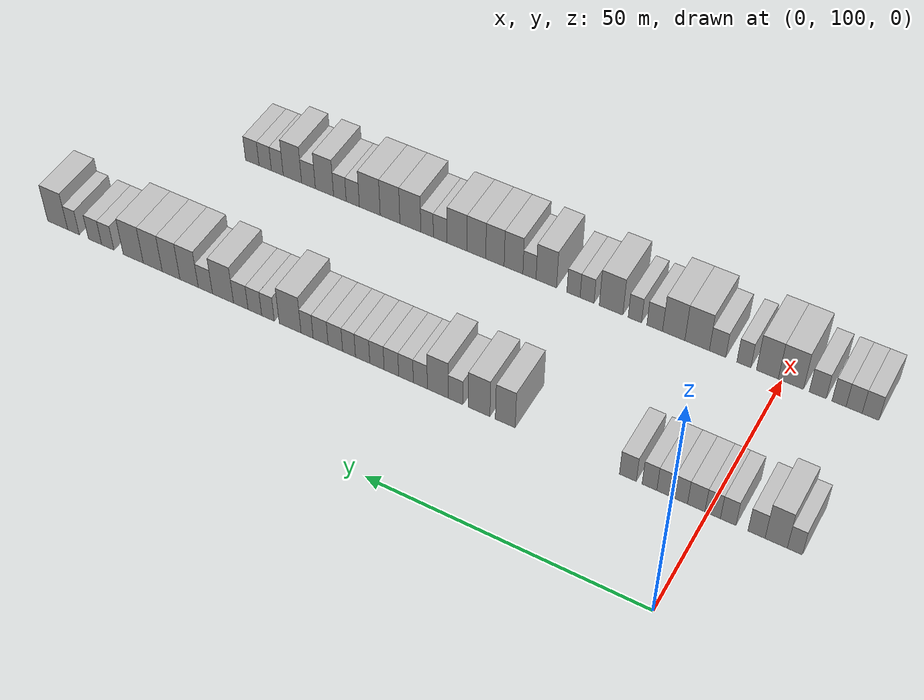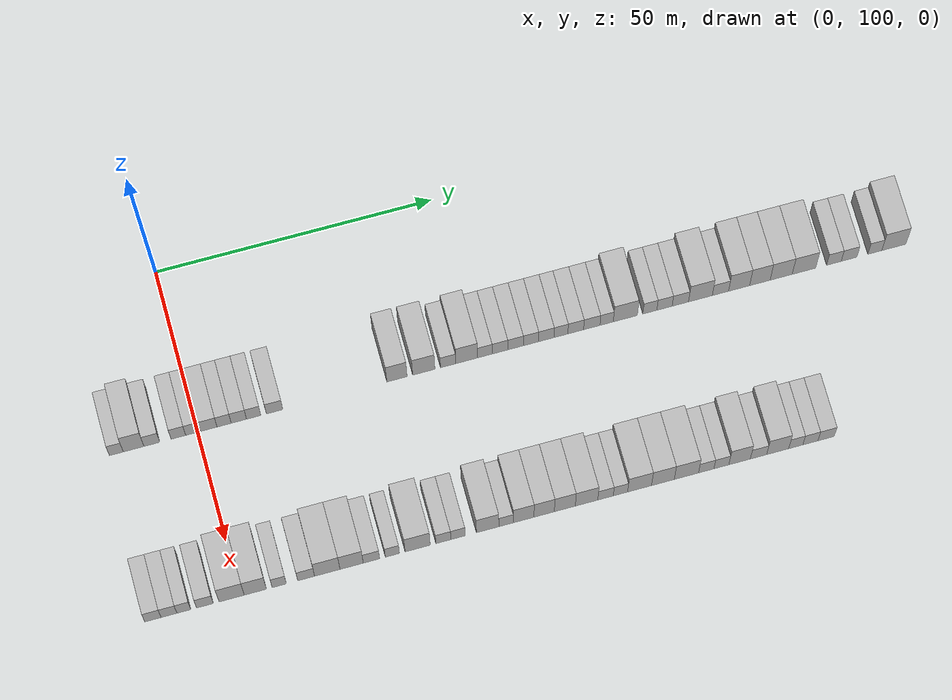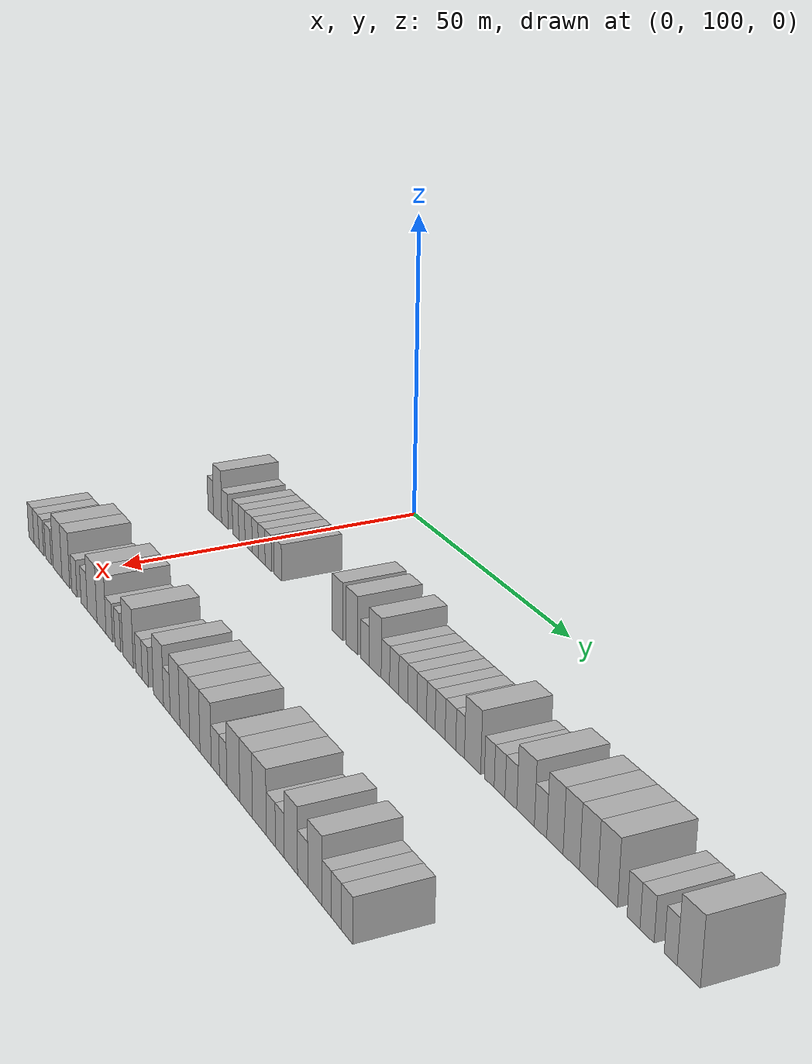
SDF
<sdf version="1.6">
 <world name="default">
  <model name="building_129">
   <static>1</static>
   <pose>25.0000 85.5705 0 0.000000 0.000000 0.000000</pose>
   <link name="link">
    <pose>0 0 3.00 0 0 0</pose>
    <collision name="collision"><geometry><box><size>10.0000 2.4705 6.0000</size></box></geometry></collision>
    <visual name="visual">
     <cast_shadows>0</cast_shadows>
     <geometry><box><size>10.0000 2.4705 6.0000</size></box></geometry>
     <material>
      <script>
       <uri>model://HANNAS_wall/materials/scripts</uri>
       <uri>model://HANNAS_wall/materials/textures</uri>
       <name>vrc/HANNAS_wall</name>
      </script>
     </material>
    </visual>
   </link>
  </model>
  <model name="building_130">
   <static>1</static>
   <pose>25.0000 88.6395 0 0.000000 0.000000 0.000000</pose>
   <link name="link">
    <pose>0 0 4.50 0 0 0</pose>
    <collision name="collision"><geometry><box><size>10.0000 3.6676 9.0000</size></box></geometry></collision>
    <visual name="visual">
     <cast_shadows>0</cast_shadows>
     <geometry><box><size>10.0000 3.6676 9.0000</size></box></geometry>
     <material>
      <script>
       <uri>model://HANNAS_wall/materials/scripts</uri>
       <uri>model://HANNAS_wall/materials/textures</uri>
       <name>vrc/HANNAS_wall</name>
      </script>
     </material>
    </visual>
   </link>
  </model>
  <model name="building_131">
   <static>1</static>
   <pose>25.0000 91.8857 0 0.000000 0.000000 0.000000</pose>
   <link name="link">
    <pose>0 0 3.00 0 0 0</pose>
    <collision name="collision"><geometry><box><size>10.0000 2.8248 6.0000</size></box></geometry></collision>
    <visual name="visual">
     <cast_shadows>0</cast_shadows>
     <geometry><box><size>10.0000 2.8248 6.0000</size></box></geometry>
     <material>
      <script>
       <uri>model://HANNAS_wall/materials/scripts</uri>
       <uri>model://HANNAS_wall/materials/textures</uri>
       <name>vrc/HANNAS_wall</name>
      </script>
     </material>
    </visual>
   </link>
  </model>
  <model name="building_132">
   <static>1</static>
   <pose>25.0000 96.6031 0 0.000000 0.000000 0.000000</pose>
   <link name="link">
    <pose>0 0 3.00 0 0 0</pose>
    <collision name="collision"><geometry><box><size>10.0000 2.6100 6.0000</size></box></geometry></collision>
    <visual name="visual">
     <cast_shadows>0</cast_shadows>
     <geometry><box><size>10.0000 2.6100 6.0000</size></box></geometry>
     <material>
      <script>
       <uri>model://HANNAS_wall/materials/scripts</uri>
       <uri>model://HANNAS_wall/materials/textures</uri>
       <name>vrc/HANNAS_wall</name>
      </script>
     </material>
    </visual>
   </link>
  </model>
  <model name="building_133">
   <static>1</static>
   <pose>25.0000 99.2189 0 0.000000 0.000000 0.000000</pose>
   <link name="link">
    <pose>0 0 3.00 0 0 0</pose>
    <collision name="collision"><geometry><box><size>10.0000 2.6217 6.0000</size></box></geometry></collision>
    <visual name="visual">
     <cast_shadows>0</cast_shadows>
     <geometry><box><size>10.0000 2.6217 6.0000</size></box></geometry>
     <material>
      <script>
       <uri>model://HANNAS_wall/materials/scripts</uri>
       <uri>model://HANNAS_wall/materials/textures</uri>
       <name>vrc/HANNAS_wall</name>
      </script>
     </material>
    </visual>
   </link>
  </model>
  <model name="building_134">
   <static>1</static>
   <pose>25.0000 102.0094 0 0.000000 0.000000 0.000000</pose>
   <link name="link">
    <pose>0 0 3.00 0 0 0</pose>
    <collision name="collision"><geometry><box><size>10.0000 2.9593 6.0000</size></box></geometry></collision>
    <visual name="visual">
     <cast_shadows>0</cast_shadows>
     <geometry><box><size>10.0000 2.9593 6.0000</size></box></geometry>
     <material>
      <script>
       <uri>model://HANNAS_wall/materials/scripts</uri>
       <uri>model://HANNAS_wall/materials/textures</uri>
       <name>vrc/HANNAS_wall</name>
      </script>
     </material>
    </visual>
   </link>
  </model>
  <model name="building_135">
   <static>1</static>
   <pose>25.0000 104.7526 0 0.000000 0.000000 0.000000</pose>
   <link name="link">
    <pose>0 0 3.00 0 0 0</pose>
    <collision name="collision"><geometry><box><size>10.0000 2.5271 6.0000</size></box></geometry></collision>
    <visual name="visual">
     <cast_shadows>0</cast_shadows>
     <geometry><box><size>10.0000 2.5271 6.0000</size></box></geometry>
     <material>
      <script>
       <uri>model://HANNAS_wall/materials/scripts</uri>
       <uri>model://HANNAS_wall/materials/textures</uri>
       <name>vrc/HANNAS_wall</name>
      </script>
     </material>
    </visual>
   </link>
  </model>
  <model name="building_136">
   <static>1</static>
   <pose>25.0000 107.3800 0 0.000000 0.000000 0.000000</pose>
   <link name="link">
    <pose>0 0 3.00 0 0 0</pose>
    <collision name="collision"><geometry><box><size>10.0000 2.7277 6.0000</size></box></geometry></collision>
    <visual name="visual">
     <cast_shadows>0</cast_shadows>
     <geometry><box><size>10.0000 2.7277 6.0000</size></box></geometry>
     <material>
      <script>
       <uri>model://HANNAS_wall/materials/scripts</uri>
       <uri>model://HANNAS_wall/materials/textures</uri>
       <name>vrc/HANNAS_wall</name>
      </script>
     </material>
    </visual>
   </link>
  </model>
  <model name="building_137">
   <static>1</static>
   <pose>25.0000 110.0173 0 0.000000 0.000000 0.000000</pose>
   <link name="link">
    <pose>0 0 3.00 0 0 0</pose>
    <collision name="collision"><geometry><box><size>10.0000 2.5469 6.0000</size></box></geometry></collision>
    <visual name="visual">
     <cast_shadows>0</cast_shadows>
     <geometry><box><size>10.0000 2.5469 6.0000</size></box></geometry>
     <material>
      <script>
       <uri>model://HANNAS_wall/materials/scripts</uri>
       <uri>model://HANNAS_wall/materials/textures</uri>
       <name>vrc/HANNAS_wall</name>
      </script>
     </material>
    </visual>
   </link>
  </model>
  <model name="building_138">
   <static>1</static>
   <pose>25.0000 113.7594 0 0.000000 0.000000 0.000000</pose>
   <link name="link">
    <pose>0 0 3.00 0 0 0</pose>
    <collision name="collision"><geometry><box><size>10.0000 2.9372 6.0000</size></box></geometry></collision>
    <visual name="visual">
     <cast_shadows>0</cast_shadows>
     <geometry><box><size>10.0000 2.9372 6.0000</size></box></geometry>
     <material>
      <script>
       <uri>model://HANNAS_wall/materials/scripts</uri>
       <uri>model://HANNAS_wall/materials/textures</uri>
       <name>vrc/HANNAS_wall</name>
      </script>
     </material>
    </visual>
   </link>
  </model>
  <model name="building_139">
   <static>1</static>
   <pose>25.0000 135.6793 0 0.000000 0.000000 0.000000</pose>
   <link name="link">
    <pose>0 0 4.50 0 0 0</pose>
    <collision name="collision"><geometry><box><size>10.0000 3.6342 9.0000</size></box></geometry></collision>
    <visual name="visual">
     <cast_shadows>0</cast_shadows>
     <geometry><box><size>10.0000 3.6342 9.0000</size></box></geometry>
     <material>
      <script>
       <uri>model://HANNAS_wall/materials/scripts</uri>
       <uri>model://HANNAS_wall/materials/textures</uri>
       <name>vrc/HANNAS_wall</name>
      </script>
     </material>
    </visual>
   </link>
  </model>
  <model name="building_140">
   <static>1</static>
   <pose>25.0000 140.4978 0 0.000000 0.000000 0.000000</pose>
   <link name="link">
    <pose>0 0 4.50 0 0 0</pose>
    <collision name="collision"><geometry><box><size>10.0000 4.0028 9.0000</size></box></geometry></collision>
    <visual name="visual">
     <cast_shadows>0</cast_shadows>
     <geometry><box><size>10.0000 4.0028 9.0000</size></box></geometry>
     <material>
      <script>
       <uri>model://HANNAS_wall/materials/scripts</uri>
       <uri>model://HANNAS_wall/materials/textures</uri>
       <name>vrc/HANNAS_wall</name>
      </script>
     </material>
    </visual>
   </link>
  </model>
  <model name="building_141">
   <static>1</static>
   <pose>25.0000 144.8788 0 0.000000 0.000000 0.000000</pose>
   <link name="link">
    <pose>0 0 3.00 0 0 0</pose>
    <collision name="collision"><geometry><box><size>10.0000 2.7592 6.0000</size></box></geometry></collision>
    <visual name="visual">
     <cast_shadows>0</cast_shadows>
     <geometry><box><size>10.0000 2.7592 6.0000</size></box></geometry>
     <material>
      <script>
       <uri>model://HANNAS_wall/materials/scripts</uri>
       <uri>model://HANNAS_wall/materials/textures</uri>
       <name>vrc/HANNAS_wall</name>
      </script>
     </material>
    </visual>
   </link>
  </model>
  <model name="building_142">
   <static>1</static>
   <pose>25.0000 148.2111 0 0.000000 0.000000 0.000000</pose>
   <link name="link">
    <pose>0 0 4.50 0 0 0</pose>
    <collision name="collision"><geometry><box><size>10.0000 3.9054 9.0000</size></box></geometry></collision>
    <visual name="visual">
     <cast_shadows>0</cast_shadows>
     <geometry><box><size>10.0000 3.9054 9.0000</size></box></geometry>
     <material>
      <script>
       <uri>model://HANNAS_wall/materials/scripts</uri>
       <uri>model://HANNAS_wall/materials/textures</uri>
       <name>vrc/HANNAS_wall</name>
      </script>
     </material>
    </visual>
   </link>
  </model>
  <model name="building_143">
   <static>1</static>
   <pose>25.0000 151.4961 0 0.000000 0.000000 0.000000</pose>
   <link name="link">
    <pose>0 0 3.00 0 0 0</pose>
    <collision name="collision"><geometry><box><size>10.0000 2.6647 6.0000</size></box></geometry></collision>
    <visual name="visual">
     <cast_shadows>0</cast_shadows>
     <geometry><box><size>10.0000 2.6647 6.0000</size></box></geometry>
     <material>
      <script>
       <uri>model://HANNAS_wall/materials/scripts</uri>
       <uri>model://HANNAS_wall/materials/textures</uri>
       <name>vrc/HANNAS_wall</name>
      </script>
     </material>
    </visual>
   </link>
  </model>
  <model name="building_144">
   <static>1</static>
   <pose>25.0000 154.2249 0 0.000000 0.000000 0.000000</pose>
   <link name="link">
    <pose>0 0 3.00 0 0 0</pose>
    <collision name="collision"><geometry><box><size>10.0000 2.7928 6.0000</size></box></geometry></collision>
    <visual name="visual">
     <cast_shadows>0</cast_shadows>
     <geometry><box><size>10.0000 2.7928 6.0000</size></box></geometry>
     <material>
      <script>
       <uri>model://HANNAS_wall/materials/scripts</uri>
       <uri>model://HANNAS_wall/materials/textures</uri>
       <name>vrc/HANNAS_wall</name>
      </script>
     </material>
    </visual>
   </link>
  </model>
  <model name="building_145">
   <static>1</static>
   <pose>25.0000 157.0172 0 0.000000 0.000000 0.000000</pose>
   <link name="link">
    <pose>0 0 3.00 0 0 0</pose>
    <collision name="collision"><geometry><box><size>10.0000 2.7918 6.0000</size></box></geometry></collision>
    <visual name="visual">
     <cast_shadows>0</cast_shadows>
     <geometry><box><size>10.0000 2.7918 6.0000</size></box></geometry>
     <material>
      <script>
       <uri>model://HANNAS_wall/materials/scripts</uri>
       <uri>model://HANNAS_wall/materials/textures</uri>
       <name>vrc/HANNAS_wall</name>
      </script>
     </material>
    </visual>
   </link>
  </model>
  <model name="building_146">
   <static>1</static>
   <pose>25.0000 159.7956 0 0.000000 0.000000 0.000000</pose>
   <link name="link">
    <pose>0 0 3.00 0 0 0</pose>
    <collision name="collision"><geometry><box><size>10.0000 2.7650 6.0000</size></box></geometry></collision>
    <visual name="visual">
     <cast_shadows>0</cast_shadows>
     <geometry><box><size>10.0000 2.7650 6.0000</size></box></geometry>
     <material>
      <script>
       <uri>model://HANNAS_wall/materials/scripts</uri>
       <uri>model://HANNAS_wall/materials/textures</uri>
       <name>vrc/HANNAS_wall</name>
      </script>
     </material>
    </visual>
   </link>
  </model>
  <model name="building_147">
   <static>1</static>
   <pose>25.0000 162.5721 0 0.000000 0.000000 0.000000</pose>
   <link name="link">
    <pose>0 0 3.00 0 0 0</pose>
    <collision name="collision"><geometry><box><size>10.0000 2.7880 6.0000</size></box></geometry></collision>
    <visual name="visual">
     <cast_shadows>0</cast_shadows>
     <geometry><box><size>10.0000 2.7880 6.0000</size></box></geometry>
     <material>
      <script>
       <uri>model://HANNAS_wall/materials/scripts</uri>
       <uri>model://HANNAS_wall/materials/textures</uri>
       <name>vrc/HANNAS_wall</name>
      </script>
     </material>
    </visual>
   </link>
  </model>
  <model name="building_148">
   <static>1</static>
   <pose>25.0000 165.2158 0 0.000000 0.000000 0.000000</pose>
   <link name="link">
    <pose>0 0 3.00 0 0 0</pose>
    <collision name="collision"><geometry><box><size>10.0000 2.4994 6.0000</size></box></geometry></collision>
    <visual name="visual">
     <cast_shadows>0</cast_shadows>
     <geometry><box><size>10.0000 2.4994 6.0000</size></box></geometry>
     <material>
      <script>
       <uri>model://HANNAS_wall/materials/scripts</uri>
       <uri>model://HANNAS_wall/materials/textures</uri>
       <name>vrc/HANNAS_wall</name>
      </script>
     </material>
    </visual>
   </link>
  </model>
  <model name="building_149">
   <static>1</static>
   <pose>25.0000 167.8904 0 0.000000 0.000000 0.000000</pose>
   <link name="link">
    <pose>0 0 3.00 0 0 0</pose>
    <collision name="collision"><geometry><box><size>10.0000 2.8497 6.0000</size></box></geometry></collision>
    <visual name="visual">
     <cast_shadows>0</cast_shadows>
     <geometry><box><size>10.0000 2.8497 6.0000</size></box></geometry>
     <material>
      <script>
       <uri>model://HANNAS_wall/materials/scripts</uri>
       <uri>model://HANNAS_wall/materials/textures</uri>
       <name>vrc/HANNAS_wall</name>
      </script>
     </material>
    </visual>
   </link>
  </model>
  <model name="building_150">
   <static>1</static>
   <pose>25.0000 170.7995 0 0.000000 0.000000 0.000000</pose>
   <link name="link">
    <pose>0 0 3.00 0 0 0</pose>
    <collision name="collision"><geometry><box><size>10.0000 2.9686 6.0000</size></box></geometry></collision>
    <visual name="visual">
     <cast_shadows>0</cast_shadows>
     <geometry><box><size>10.0000 2.9686 6.0000</size></box></geometry>
     <material>
      <script>
       <uri>model://HANNAS_wall/materials/scripts</uri>
       <uri>model://HANNAS_wall/materials/textures</uri>
       <name>vrc/HANNAS_wall</name>
      </script>
     </material>
    </visual>
   </link>
  </model>
  <model name="building_151">
   <static>1</static>
   <pose>25.0000 173.4852 0 0.000000 0.000000 0.000000</pose>
   <link name="link">
    <pose>0 0 3.00 0 0 0</pose>
    <collision name="collision"><geometry><box><size>10.0000 2.4027 6.0000</size></box></geometry></collision>
    <visual name="visual">
     <cast_shadows>0</cast_shadows>
     <geometry><box><size>10.0000 2.4027 6.0000</size></box></geometry>
     <material>
      <script>
       <uri>model://HANNAS_wall/materials/scripts</uri>
       <uri>model://HANNAS_wall/materials/textures</uri>
       <name>vrc/HANNAS_wall</name>
      </script>
     </material>
    </visual>
   </link>
  </model>
  <model name="building_152">
   <static>1</static>
   <pose>25.0000 176.8687 0 0.000000 0.000000 0.000000</pose>
   <link name="link">
    <pose>0 0 4.50 0 0 0</pose>
    <collision name="collision"><geometry><box><size>10.0000 4.3644 9.0000</size></box></geometry></collision>
    <visual name="visual">
     <cast_shadows>0</cast_shadows>
     <geometry><box><size>10.0000 4.3644 9.0000</size></box></geometry>
     <material>
      <script>
       <uri>model://HANNAS_wall/materials/scripts</uri>
       <uri>model://HANNAS_wall/materials/textures</uri>
       <name>vrc/HANNAS_wall</name>
      </script>
     </material>
    </visual>
   </link>
  </model>
  <model name="building_153">
   <static>1</static>
   <pose>25.0000 181.3226 0 0.000000 0.000000 0.000000</pose>
   <link name="link">
    <pose>0 0 3.00 0 0 0</pose>
    <collision name="collision"><geometry><box><size>10.0000 2.5434 6.0000</size></box></geometry></collision>
    <visual name="visual">
     <cast_shadows>0</cast_shadows>
     <geometry><box><size>10.0000 2.5434 6.0000</size></box></geometry>
     <material>
      <script>
       <uri>model://HANNAS_wall/materials/scripts</uri>
       <uri>model://HANNAS_wall/materials/textures</uri>
       <name>vrc/HANNAS_wall</name>
      </script>
     </material>
    </visual>
   </link>
  </model>
  <model name="building_154">
   <static>1</static>
   <pose>25.0000 183.9826 0 0.000000 0.000000 0.000000</pose>
   <link name="link">
    <pose>0 0 3.00 0 0 0</pose>
    <collision name="collision"><geometry><box><size>10.0000 2.7764 6.0000</size></box></geometry></collision>
    <visual name="visual">
     <cast_shadows>0</cast_shadows>
     <geometry><box><size>10.0000 2.7764 6.0000</size></box></geometry>
     <material>
      <script>
       <uri>model://HANNAS_wall/materials/scripts</uri>
       <uri>model://HANNAS_wall/materials/textures</uri>
       <name>vrc/HANNAS_wall</name>
      </script>
     </material>
    </visual>
   </link>
  </model>
  <model name="building_155">
   <static>1</static>
   <pose>25.0000 186.8530 0 0.000000 0.000000 0.000000</pose>
   <link name="link">
    <pose>0 0 3.00 0 0 0</pose>
    <collision name="collision"><geometry><box><size>10.0000 2.9643 6.0000</size></box></geometry></collision>
    <visual name="visual">
     <cast_shadows>0</cast_shadows>
     <geometry><box><size>10.0000 2.9643 6.0000</size></box></geometry>
     <material>
      <script>
       <uri>model://HANNAS_wall/materials/scripts</uri>
       <uri>model://HANNAS_wall/materials/textures</uri>
       <name>vrc/HANNAS_wall</name>
      </script>
     </material>
    </visual>
   </link>
  </model>
  <model name="building_156">
   <static>1</static>
   <pose>25.0000 190.5050 0 0.000000 0.000000 0.000000</pose>
   <link name="link">
    <pose>0 0 4.50 0 0 0</pose>
    <collision name="collision"><geometry><box><size>10.0000 4.3397 9.0000</size></box></geometry></collision>
    <visual name="visual">
     <cast_shadows>0</cast_shadows>
     <geometry><box><size>10.0000 4.3397 9.0000</size></box></geometry>
     <material>
      <script>
       <uri>model://HANNAS_wall/materials/scripts</uri>
       <uri>model://HANNAS_wall/materials/textures</uri>
       <name>vrc/HANNAS_wall</name>
      </script>
     </material>
    </visual>
   </link>
  </model>
  <model name="building_157">
   <static>1</static>
   <pose>25.0000 194.1493 0 0.000000 0.000000 0.000000</pose>
   <link name="link">
    <pose>0 0 3.00 0 0 0</pose>
    <collision name="collision"><geometry><box><size>10.0000 2.9489 6.0000</size></box></geometry></collision>
    <visual name="visual">
     <cast_shadows>0</cast_shadows>
     <geometry><box><size>10.0000 2.9489 6.0000</size></box></geometry>
     <material>
      <script>
       <uri>model://HANNAS_wall/materials/scripts</uri>
       <uri>model://HANNAS_wall/materials/textures</uri>
       <name>vrc/HANNAS_wall</name>
      </script>
     </material>
    </visual>
   </link>
  </model>
  <model name="building_158">
   <static>1</static>
   <pose>25.0000 197.5414 0 0.000000 0.000000 0.000000</pose>
   <link name="link">
    <pose>0 0 4.50 0 0 0</pose>
    <collision name="collision"><geometry><box><size>10.0000 3.8354 9.0000</size></box></geometry></collision>
    <visual name="visual">
     <cast_shadows>0</cast_shadows>
     <geometry><box><size>10.0000 3.8354 9.0000</size></box></geometry>
     <material>
      <script>
       <uri>model://HANNAS_wall/materials/scripts</uri>
       <uri>model://HANNAS_wall/materials/textures</uri>
       <name>vrc/HANNAS_wall</name>
      </script>
     </material>
    </visual>
   </link>
  </model>
  <model name="building_159">
   <static>1</static>
   <pose>25.0000 201.3271 0 0.000000 0.000000 0.000000</pose>
   <link name="link">
    <pose>0 0 4.50 0 0 0</pose>
    <collision name="collision"><geometry><box><size>10.0000 3.7359 9.0000</size></box></geometry></collision>
    <visual name="visual">
     <cast_shadows>0</cast_shadows>
     <geometry><box><size>10.0000 3.7359 9.0000</size></box></geometry>
     <material>
      <script>
       <uri>model://HANNAS_wall/materials/scripts</uri>
       <uri>model://HANNAS_wall/materials/textures</uri>
       <name>vrc/HANNAS_wall</name>
      </script>
     </material>
    </visual>
   </link>
  </model>
  <model name="building_160">
   <static>1</static>
   <pose>25.0000 205.2073 0 0.000000 0.000000 0.000000</pose>
   <link name="link">
    <pose>0 0 4.50 0 0 0</pose>
    <collision name="collision"><geometry><box><size>10.0000 4.0246 9.0000</size></box></geometry></collision>
    <visual name="visual">
     <cast_shadows>0</cast_shadows>
     <geometry><box><size>10.0000 4.0246 9.0000</size></box></geometry>
     <material>
      <script>
       <uri>model://HANNAS_wall/materials/scripts</uri>
       <uri>model://HANNAS_wall/materials/textures</uri>
       <name>vrc/HANNAS_wall</name>
      </script>
     </material>
    </visual>
   </link>
  </model>
  <model name="building_161">
   <static>1</static>
   <pose>25.0000 209.3682 0 0.000000 0.000000 0.000000</pose>
   <link name="link">
    <pose>0 0 4.50 0 0 0</pose>
    <collision name="collision"><geometry><box><size>10.0000 4.2972 9.0000</size></box></geometry></collision>
    <visual name="visual">
     <cast_shadows>0</cast_shadows>
     <geometry><box><size>10.0000 4.2972 9.0000</size></box></geometry>
     <material>
      <script>
       <uri>model://HANNAS_wall/materials/scripts</uri>
       <uri>model://HANNAS_wall/materials/textures</uri>
       <name>vrc/HANNAS_wall</name>
      </script>
     </material>
    </visual>
   </link>
  </model>
  <model name="building_162">
   <static>1</static>
   <pose>25.0000 214.8520 0 0.000000 0.000000 0.000000</pose>
   <link name="link">
    <pose>0 0 3.00 0 0 0</pose>
    <collision name="collision"><geometry><box><size>10.0000 2.6704 6.0000</size></box></geometry></collision>
    <visual name="visual">
     <cast_shadows>0</cast_shadows>
     <geometry><box><size>10.0000 2.6704 6.0000</size></box></geometry>
     <material>
      <script>
       <uri>model://HANNAS_wall/materials/scripts</uri>
       <uri>model://HANNAS_wall/materials/textures</uri>
       <name>vrc/HANNAS_wall</name>
      </script>
     </material>
    </visual>
   </link>
  </model>
  <model name="building_163">
   <static>1</static>
   <pose>25.0000 217.6243 0 0.000000 0.000000 0.000000</pose>
   <link name="link">
    <pose>0 0 3.00 0 0 0</pose>
    <collision name="collision"><geometry><box><size>10.0000 2.8742 6.0000</size></box></geometry></collision>
    <visual name="visual">
     <cast_shadows>0</cast_shadows>
     <geometry><box><size>10.0000 2.8742 6.0000</size></box></geometry>
     <material>
      <script>
       <uri>model://HANNAS_wall/materials/scripts</uri>
       <uri>model://HANNAS_wall/materials/textures</uri>
       <name>vrc/HANNAS_wall</name>
      </script>
     </material>
    </visual>
   </link>
  </model>
  <model name="building_164">
   <static>1</static>
   <pose>25.0000 222.3308 0 0.000000 0.000000 0.000000</pose>
   <link name="link">
    <pose>0 0 3.00 0 0 0</pose>
    <collision name="collision"><geometry><box><size>10.0000 2.5389 6.0000</size></box></geometry></collision>
    <visual name="visual">
     <cast_shadows>0</cast_shadows>
     <geometry><box><size>10.0000 2.5389 6.0000</size></box></geometry>
     <material>
      <script>
       <uri>model://HANNAS_wall/materials/scripts</uri>
       <uri>model://HANNAS_wall/materials/textures</uri>
       <name>vrc/HANNAS_wall</name>
      </script>
     </material>
    </visual>
   </link>
  </model>
  <model name="building_165">
   <static>1</static>
   <pose>25.0000 225.8159 0 0.000000 0.000000 0.000000</pose>
   <link name="link">
    <pose>0 0 4.50 0 0 0</pose>
    <collision name="collision"><geometry><box><size>10.0000 4.4312 9.0000</size></box></geometry></collision>
    <visual name="visual">
     <cast_shadows>0</cast_shadows>
     <geometry><box><size>10.0000 4.4312 9.0000</size></box></geometry>
     <material>
      <script>
       <uri>model://HANNAS_wall/materials/scripts</uri>
       <uri>model://HANNAS_wall/materials/textures</uri>
       <name>vrc/HANNAS_wall</name>
      </script>
     </material>
    </visual>
   </link>
  </model>
  <model name="building_355">
   <static>1</static>
   <pose>55.0000 84.6403 0 0.000000 0.000000 0.000000</pose>
   <link name="link">
    <pose>0 0 3.00 0 0 0</pose>
    <collision name="collision"><geometry><box><size>10.0000 2.8675 6.0000</size></box></geometry></collision>
    <visual name="visual">
     <cast_shadows>0</cast_shadows>
     <geometry><box><size>10.0000 2.8675 6.0000</size></box></geometry>
     <material>
      <script>
       <uri>model://HANNAS_wall/materials/scripts</uri>
       <uri>model://HANNAS_wall/materials/textures</uri>
       <name>vrc/HANNAS_wall</name>
      </script>
     </material>
    </visual>
   </link>
  </model>
  <model name="building_356">
   <static>1</static>
   <pose>55.0000 87.4614 0 0.000000 0.000000 0.000000</pose>
   <link name="link">
    <pose>0 0 3.00 0 0 0</pose>
    <collision name="collision"><geometry><box><size>10.0000 2.7746 6.0000</size></box></geometry></collision>
    <visual name="visual">
     <cast_shadows>0</cast_shadows>
     <geometry><box><size>10.0000 2.7746 6.0000</size></box></geometry>
     <material>
      <script>
       <uri>model://HANNAS_wall/materials/scripts</uri>
       <uri>model://HANNAS_wall/materials/textures</uri>
       <name>vrc/HANNAS_wall</name>
      </script>
     </material>
    </visual>
   </link>
  </model>
  <model name="building_357">
   <static>1</static>
   <pose>55.0000 90.0687 0 0.000000 0.000000 0.000000</pose>
   <link name="link">
    <pose>0 0 3.00 0 0 0</pose>
    <collision name="collision"><geometry><box><size>10.0000 2.4400 6.0000</size></box></geometry></collision>
    <visual name="visual">
     <cast_shadows>0</cast_shadows>
     <geometry><box><size>10.0000 2.4400 6.0000</size></box></geometry>
     <material>
      <script>
       <uri>model://HANNAS_wall/materials/scripts</uri>
       <uri>model://HANNAS_wall/materials/textures</uri>
       <name>vrc/HANNAS_wall</name>
      </script>
     </material>
    </visual>
   </link>
  </model>
  <model name="building_358">
   <static>1</static>
   <pose>55.0000 93.7676 0 0.000000 0.000000 0.000000</pose>
   <link name="link">
    <pose>0 0 3.00 0 0 0</pose>
    <collision name="collision"><geometry><box><size>10.0000 2.9579 6.0000</size></box></geometry></collision>
    <visual name="visual">
     <cast_shadows>0</cast_shadows>
     <geometry><box><size>10.0000 2.9579 6.0000</size></box></geometry>
     <material>
      <script>
       <uri>model://HANNAS_wall/materials/scripts</uri>
       <uri>model://HANNAS_wall/materials/textures</uri>
       <name>vrc/HANNAS_wall</name>
      </script>
     </material>
    </visual>
   </link>
  </model>
  <model name="building_359">
   <static>1</static>
   <pose>55.0000 98.4735 0 0.000000 0.000000 0.000000</pose>
   <link name="link">
    <pose>0 0 4.50 0 0 0</pose>
    <collision name="collision"><geometry><box><size>10.0000 4.4538 9.0000</size></box></geometry></collision>
    <visual name="visual">
     <cast_shadows>0</cast_shadows>
     <geometry><box><size>10.0000 4.4538 9.0000</size></box></geometry>
     <material>
      <script>
       <uri>model://HANNAS_wall/materials/scripts</uri>
       <uri>model://HANNAS_wall/materials/textures</uri>
       <name>vrc/HANNAS_wall</name>
      </script>
     </material>
    </visual>
   </link>
  </model>
  <model name="building_360">
   <static>1</static>
   <pose>55.0000 102.6452 0 0.000000 0.000000 0.000000</pose>
   <link name="link">
    <pose>0 0 4.50 0 0 0</pose>
    <collision name="collision"><geometry><box><size>10.0000 3.8898 9.0000</size></box></geometry></collision>
    <visual name="visual">
     <cast_shadows>0</cast_shadows>
     <geometry><box><size>10.0000 3.8898 9.0000</size></box></geometry>
     <material>
      <script>
       <uri>model://HANNAS_wall/materials/scripts</uri>
       <uri>model://HANNAS_wall/materials/textures</uri>
       <name>vrc/HANNAS_wall</name>
      </script>
     </material>
    </visual>
   </link>
  </model>
  <model name="building_361">
   <static>1</static>
   <pose>55.0000 106.8451 0 0.000000 0.000000 0.000000</pose>
   <link name="link">
    <pose>0 0 3.00 0 0 0</pose>
    <collision name="collision"><geometry><box><size>10.0000 2.5099 6.0000</size></box></geometry></collision>
    <visual name="visual">
     <cast_shadows>0</cast_shadows>
     <geometry><box><size>10.0000 2.5099 6.0000</size></box></geometry>
     <material>
      <script>
       <uri>model://HANNAS_wall/materials/scripts</uri>
       <uri>model://HANNAS_wall/materials/textures</uri>
       <name>vrc/HANNAS_wall</name>
      </script>
     </material>
    </visual>
   </link>
  </model>
  <model name="building_362">
   <static>1</static>
   <pose>55.0000 111.5904 0 0.000000 0.000000 0.000000</pose>
   <link name="link">
    <pose>0 0 3.00 0 0 0</pose>
    <collision name="collision"><geometry><box><size>10.0000 2.9807 6.0000</size></box></geometry></collision>
    <visual name="visual">
     <cast_shadows>0</cast_shadows>
     <geometry><box><size>10.0000 2.9807 6.0000</size></box></geometry>
     <material>
      <script>
       <uri>model://HANNAS_wall/materials/scripts</uri>
       <uri>model://HANNAS_wall/materials/textures</uri>
       <name>vrc/HANNAS_wall</name>
      </script>
     </material>
    </visual>
   </link>
  </model>
  <model name="building_363">
   <static>1</static>
   <pose>55.0000 115.3212 0 0.000000 0.000000 0.000000</pose>
   <link name="link">
    <pose>0 0 4.50 0 0 0</pose>
    <collision name="collision"><geometry><box><size>10.0000 4.4809 9.0000</size></box></geometry></collision>
    <visual name="visual">
     <cast_shadows>0</cast_shadows>
     <geometry><box><size>10.0000 4.4809 9.0000</size></box></geometry>
     <material>
      <script>
       <uri>model://HANNAS_wall/materials/scripts</uri>
       <uri>model://HANNAS_wall/materials/textures</uri>
       <name>vrc/HANNAS_wall</name>
      </script>
     </material>
    </visual>
   </link>
  </model>
  <model name="building_364">
   <static>1</static>
   <pose>55.0000 119.6238 0 0.000000 0.000000 0.000000</pose>
   <link name="link">
    <pose>0 0 4.50 0 0 0</pose>
    <collision name="collision"><geometry><box><size>10.0000 4.1243 9.0000</size></box></geometry></collision>
    <visual name="visual">
     <cast_shadows>0</cast_shadows>
     <geometry><box><size>10.0000 4.1243 9.0000</size></box></geometry>
     <material>
      <script>
       <uri>model://HANNAS_wall/materials/scripts</uri>
       <uri>model://HANNAS_wall/materials/textures</uri>
       <name>vrc/HANNAS_wall</name>
      </script>
     </material>
    </visual>
   </link>
  </model>
  <model name="building_365">
   <static>1</static>
   <pose>55.0000 123.1384 0 0.000000 0.000000 0.000000</pose>
   <link name="link">
    <pose>0 0 3.00 0 0 0</pose>
    <collision name="collision"><geometry><box><size>10.0000 2.9047 6.0000</size></box></geometry></collision>
    <visual name="visual">
     <cast_shadows>0</cast_shadows>
     <geometry><box><size>10.0000 2.9047 6.0000</size></box></geometry>
     <material>
      <script>
       <uri>model://HANNAS_wall/materials/scripts</uri>
       <uri>model://HANNAS_wall/materials/textures</uri>
       <name>vrc/HANNAS_wall</name>
      </script>
     </material>
    </visual>
   </link>
  </model>
  <model name="building_366">
   <static>1</static>
   <pose>55.0000 126.8406 0 0.000000 0.000000 0.000000</pose>
   <link name="link">
    <pose>0 0 3.00 0 0 0</pose>
    <collision name="collision"><geometry><box><size>10.0000 2.4997 6.0000</size></box></geometry></collision>
    <visual name="visual">
     <cast_shadows>0</cast_shadows>
     <geometry><box><size>10.0000 2.4997 6.0000</size></box></geometry>
     <material>
      <script>
       <uri>model://HANNAS_wall/materials/scripts</uri>
       <uri>model://HANNAS_wall/materials/textures</uri>
       <name>vrc/HANNAS_wall</name>
      </script>
     </material>
    </visual>
   </link>
  </model>
  <model name="building_367">
   <static>1</static>
   <pose>55.0000 131.3205 0 0.000000 0.000000 0.000000</pose>
   <link name="link">
    <pose>0 0 4.50 0 0 0</pose>
    <collision name="collision"><geometry><box><size>10.0000 4.4602 9.0000</size></box></geometry></collision>
    <visual name="visual">
     <cast_shadows>0</cast_shadows>
     <geometry><box><size>10.0000 4.4602 9.0000</size></box></geometry>
     <material>
      <script>
       <uri>model://HANNAS_wall/materials/scripts</uri>
       <uri>model://HANNAS_wall/materials/textures</uri>
       <name>vrc/HANNAS_wall</name>
      </script>
     </material>
    </visual>
   </link>
  </model>
  <model name="building_368">
   <static>1</static>
   <pose>55.0000 135.8793 0 0.000000 0.000000 0.000000</pose>
   <link name="link">
    <pose>0 0 3.00 0 0 0</pose>
    <collision name="collision"><geometry><box><size>10.0000 2.6573 6.0000</size></box></geometry></collision>
    <visual name="visual">
     <cast_shadows>0</cast_shadows>
     <geometry><box><size>10.0000 2.6573 6.0000</size></box></geometry>
     <material>
      <script>
       <uri>model://HANNAS_wall/materials/scripts</uri>
       <uri>model://HANNAS_wall/materials/textures</uri>
       <name>vrc/HANNAS_wall</name>
      </script>
     </material>
    </visual>
   </link>
  </model>
  <model name="building_369">
   <static>1</static>
   <pose>55.0000 138.4754 0 0.000000 0.000000 0.000000</pose>
   <link name="link">
    <pose>0 0 3.00 0 0 0</pose>
    <collision name="collision"><geometry><box><size>10.0000 2.5349 6.0000</size></box></geometry></collision>
    <visual name="visual">
     <cast_shadows>0</cast_shadows>
     <geometry><box><size>10.0000 2.5349 6.0000</size></box></geometry>
     <material>
      <script>
       <uri>model://HANNAS_wall/materials/scripts</uri>
       <uri>model://HANNAS_wall/materials/textures</uri>
       <name>vrc/HANNAS_wall</name>
      </script>
     </material>
    </visual>
   </link>
  </model>
  <model name="building_370">
   <static>1</static>
   <pose>55.0000 143.7342 0 0.000000 0.000000 0.000000</pose>
   <link name="link">
    <pose>0 0 4.50 0 0 0</pose>
    <collision name="collision"><geometry><box><size>10.0000 3.9827 9.0000</size></box></geometry></collision>
    <visual name="visual">
     <cast_shadows>0</cast_shadows>
     <geometry><box><size>10.0000 3.9827 9.0000</size></box></geometry>
     <material>
      <script>
       <uri>model://HANNAS_wall/materials/scripts</uri>
       <uri>model://HANNAS_wall/materials/textures</uri>
       <name>vrc/HANNAS_wall</name>
      </script>
     </material>
    </visual>
   </link>
  </model>
  <model name="building_371">
   <static>1</static>
   <pose>55.0000 147.0083 0 0.000000 0.000000 0.000000</pose>
   <link name="link">
    <pose>0 0 3.00 0 0 0</pose>
    <collision name="collision"><geometry><box><size>10.0000 2.5655 6.0000</size></box></geometry></collision>
    <visual name="visual">
     <cast_shadows>0</cast_shadows>
     <geometry><box><size>10.0000 2.5655 6.0000</size></box></geometry>
     <material>
      <script>
       <uri>model://HANNAS_wall/materials/scripts</uri>
       <uri>model://HANNAS_wall/materials/textures</uri>
       <name>vrc/HANNAS_wall</name>
      </script>
     </material>
    </visual>
   </link>
  </model>
  <model name="building_372">
   <static>1</static>
   <pose>55.0000 150.1349 0 0.000000 0.000000 0.000000</pose>
   <link name="link">
    <pose>0 0 4.50 0 0 0</pose>
    <collision name="collision"><geometry><box><size>10.0000 3.6877 9.0000</size></box></geometry></collision>
    <visual name="visual">
     <cast_shadows>0</cast_shadows>
     <geometry><box><size>10.0000 3.6877 9.0000</size></box></geometry>
     <material>
      <script>
       <uri>model://HANNAS_wall/materials/scripts</uri>
       <uri>model://HANNAS_wall/materials/textures</uri>
       <name>vrc/HANNAS_wall</name>
      </script>
     </material>
    </visual>
   </link>
  </model>
  <model name="building_373">
   <static>1</static>
   <pose>55.0000 153.7992 0 0.000000 0.000000 0.000000</pose>
   <link name="link">
    <pose>0 0 4.50 0 0 0</pose>
    <collision name="collision"><geometry><box><size>10.0000 3.6410 9.0000</size></box></geometry></collision>
    <visual name="visual">
     <cast_shadows>0</cast_shadows>
     <geometry><box><size>10.0000 3.6410 9.0000</size></box></geometry>
     <material>
      <script>
       <uri>model://HANNAS_wall/materials/scripts</uri>
       <uri>model://HANNAS_wall/materials/textures</uri>
       <name>vrc/HANNAS_wall</name>
      </script>
     </material>
    </visual>
   </link>
  </model>
  <model name="building_374">
   <static>1</static>
   <pose>55.0000 157.4906 0 0.000000 0.000000 0.000000</pose>
   <link name="link">
    <pose>0 0 4.50 0 0 0</pose>
    <collision name="collision"><geometry><box><size>10.0000 3.7418 9.0000</size></box></geometry></collision>
    <visual name="visual">
     <cast_shadows>0</cast_shadows>
     <geometry><box><size>10.0000 3.7418 9.0000</size></box></geometry>
     <material>
      <script>
       <uri>model://HANNAS_wall/materials/scripts</uri>
       <uri>model://HANNAS_wall/materials/textures</uri>
       <name>vrc/HANNAS_wall</name>
      </script>
     </material>
    </visual>
   </link>
  </model>
  <model name="building_375">
   <static>1</static>
   <pose>55.0000 161.3643 0 0.000000 0.000000 0.000000</pose>
   <link name="link">
    <pose>0 0 4.50 0 0 0</pose>
    <collision name="collision"><geometry><box><size>10.0000 4.0056 9.0000</size></box></geometry></collision>
    <visual name="visual">
     <cast_shadows>0</cast_shadows>
     <geometry><box><size>10.0000 4.0056 9.0000</size></box></geometry>
     <material>
      <script>
       <uri>model://HANNAS_wall/materials/scripts</uri>
       <uri>model://HANNAS_wall/materials/textures</uri>
       <name>vrc/HANNAS_wall</name>
      </script>
     </material>
    </visual>
   </link>
  </model>
  <model name="building_376">
   <static>1</static>
   <pose>55.0000 164.7593 0 0.000000 0.000000 0.000000</pose>
   <link name="link">
    <pose>0 0 3.00 0 0 0</pose>
    <collision name="collision"><geometry><box><size>10.0000 2.7843 6.0000</size></box></geometry></collision>
    <visual name="visual">
     <cast_shadows>0</cast_shadows>
     <geometry><box><size>10.0000 2.7843 6.0000</size></box></geometry>
     <material>
      <script>
       <uri>model://HANNAS_wall/materials/scripts</uri>
       <uri>model://HANNAS_wall/materials/textures</uri>
       <name>vrc/HANNAS_wall</name>
      </script>
     </material>
    </visual>
   </link>
  </model>
  <model name="building_377">
   <static>1</static>
   <pose>55.0000 167.4257 0 0.000000 0.000000 0.000000</pose>
   <link name="link">
    <pose>0 0 3.00 0 0 0</pose>
    <collision name="collision"><geometry><box><size>10.0000 2.5485 6.0000</size></box></geometry></collision>
    <visual name="visual">
     <cast_shadows>0</cast_shadows>
     <geometry><box><size>10.0000 2.5485 6.0000</size></box></geometry>
     <material>
      <script>
       <uri>model://HANNAS_wall/materials/scripts</uri>
       <uri>model://HANNAS_wall/materials/textures</uri>
       <name>vrc/HANNAS_wall</name>
      </script>
     </material>
    </visual>
   </link>
  </model>
  <model name="building_378">
   <static>1</static>
   <pose>55.0000 170.8414 0 0.000000 0.000000 0.000000</pose>
   <link name="link">
    <pose>0 0 4.50 0 0 0</pose>
    <collision name="collision"><geometry><box><size>10.0000 4.2829 9.0000</size></box></geometry></collision>
    <visual name="visual">
     <cast_shadows>0</cast_shadows>
     <geometry><box><size>10.0000 4.2829 9.0000</size></box></geometry>
     <material>
      <script>
       <uri>model://HANNAS_wall/materials/scripts</uri>
       <uri>model://HANNAS_wall/materials/textures</uri>
       <name>vrc/HANNAS_wall</name>
      </script>
     </material>
    </visual>
   </link>
  </model>
  <model name="building_379">
   <static>1</static>
   <pose>55.0000 175.0196 0 0.000000 0.000000 0.000000</pose>
   <link name="link">
    <pose>0 0 4.50 0 0 0</pose>
    <collision name="collision"><geometry><box><size>10.0000 4.0734 9.0000</size></box></geometry></collision>
    <visual name="visual">
     <cast_shadows>0</cast_shadows>
     <geometry><box><size>10.0000 4.0734 9.0000</size></box></geometry>
     <material>
      <script>
       <uri>model://HANNAS_wall/materials/scripts</uri>
       <uri>model://HANNAS_wall/materials/textures</uri>
       <name>vrc/HANNAS_wall</name>
      </script>
     </material>
    </visual>
   </link>
  </model>
  <model name="building_380">
   <static>1</static>
   <pose>55.0000 179.2295 0 0.000000 0.000000 0.000000</pose>
   <link name="link">
    <pose>0 0 4.50 0 0 0</pose>
    <collision name="collision"><geometry><box><size>10.0000 4.3465 9.0000</size></box></geometry></collision>
    <visual name="visual">
     <cast_shadows>0</cast_shadows>
     <geometry><box><size>10.0000 4.3465 9.0000</size></box></geometry>
     <material>
      <script>
       <uri>model://HANNAS_wall/materials/scripts</uri>
       <uri>model://HANNAS_wall/materials/textures</uri>
       <name>vrc/HANNAS_wall</name>
      </script>
     </material>
    </visual>
   </link>
  </model>
  <model name="building_381">
   <static>1</static>
   <pose>55.0000 182.7849 0 0.000000 0.000000 0.000000</pose>
   <link name="link">
    <pose>0 0 3.00 0 0 0</pose>
    <collision name="collision"><geometry><box><size>10.0000 2.7643 6.0000</size></box></geometry></collision>
    <visual name="visual">
     <cast_shadows>0</cast_shadows>
     <geometry><box><size>10.0000 2.7643 6.0000</size></box></geometry>
     <material>
      <script>
       <uri>model://HANNAS_wall/materials/scripts</uri>
       <uri>model://HANNAS_wall/materials/textures</uri>
       <name>vrc/HANNAS_wall</name>
      </script>
     </material>
    </visual>
   </link>
  </model>
  <model name="building_382">
   <static>1</static>
   <pose>55.0000 185.5009 0 0.000000 0.000000 0.000000</pose>
   <link name="link">
    <pose>0 0 3.00 0 0 0</pose>
    <collision name="collision"><geometry><box><size>10.0000 2.6677 6.0000</size></box></geometry></collision>
    <visual name="visual">
     <cast_shadows>0</cast_shadows>
     <geometry><box><size>10.0000 2.6677 6.0000</size></box></geometry>
     <material>
      <script>
       <uri>model://HANNAS_wall/materials/scripts</uri>
       <uri>model://HANNAS_wall/materials/textures</uri>
       <name>vrc/HANNAS_wall</name>
      </script>
     </material>
    </visual>
   </link>
  </model>
  <model name="building_383">
   <static>1</static>
   <pose>55.0000 188.7719 0 0.000000 0.000000 0.000000</pose>
   <link name="link">
    <pose>0 0 4.50 0 0 0</pose>
    <collision name="collision"><geometry><box><size>10.0000 3.8744 9.0000</size></box></geometry></collision>
    <visual name="visual">
     <cast_shadows>0</cast_shadows>
     <geometry><box><size>10.0000 3.8744 9.0000</size></box></geometry>
     <material>
      <script>
       <uri>model://HANNAS_wall/materials/scripts</uri>
       <uri>model://HANNAS_wall/materials/textures</uri>
       <name>vrc/HANNAS_wall</name>
      </script>
     </material>
    </visual>
   </link>
  </model>
  <model name="building_384">
   <static>1</static>
   <pose>55.0000 192.1783 0 0.000000 0.000000 0.000000</pose>
   <link name="link">
    <pose>0 0 3.00 0 0 0</pose>
    <collision name="collision"><geometry><box><size>10.0000 2.9383 6.0000</size></box></geometry></collision>
    <visual name="visual">
     <cast_shadows>0</cast_shadows>
     <geometry><box><size>10.0000 2.9383 6.0000</size></box></geometry>
     <material>
      <script>
       <uri>model://HANNAS_wall/materials/scripts</uri>
       <uri>model://HANNAS_wall/materials/textures</uri>
       <name>vrc/HANNAS_wall</name>
      </script>
     </material>
    </visual>
   </link>
  </model>
  <model name="building_385">
   <static>1</static>
   <pose>55.0000 195.6294 0 0.000000 0.000000 0.000000</pose>
   <link name="link">
    <pose>0 0 4.50 0 0 0</pose>
    <collision name="collision"><geometry><box><size>10.0000 3.9639 9.0000</size></box></geometry></collision>
    <visual name="visual">
     <cast_shadows>0</cast_shadows>
     <geometry><box><size>10.0000 3.9639 9.0000</size></box></geometry>
     <material>
      <script>
       <uri>model://HANNAS_wall/materials/scripts</uri>
       <uri>model://HANNAS_wall/materials/textures</uri>
       <name>vrc/HANNAS_wall</name>
      </script>
     </material>
    </visual>
   </link>
  </model>
  <model name="building_386">
   <static>1</static>
   <pose>55.0000 198.8939 0 0.000000 0.000000 0.000000</pose>
   <link name="link">
    <pose>0 0 3.00 0 0 0</pose>
    <collision name="collision"><geometry><box><size>10.0000 2.5652 6.0000</size></box></geometry></collision>
    <visual name="visual">
     <cast_shadows>0</cast_shadows>
     <geometry><box><size>10.0000 2.5652 6.0000</size></box></geometry>
     <material>
      <script>
       <uri>model://HANNAS_wall/materials/scripts</uri>
       <uri>model://HANNAS_wall/materials/textures</uri>
       <name>vrc/HANNAS_wall</name>
      </script>
     </material>
    </visual>
   </link>
  </model>
  <model name="building_387">
   <static>1</static>
   <pose>55.0000 201.5223 0 0.000000 0.000000 0.000000</pose>
   <link name="link">
    <pose>0 0 3.00 0 0 0</pose>
    <collision name="collision"><geometry><box><size>10.0000 2.6916 6.0000</size></box></geometry></collision>
    <visual name="visual">
     <cast_shadows>0</cast_shadows>
     <geometry><box><size>10.0000 2.6916 6.0000</size></box></geometry>
     <material>
      <script>
       <uri>model://HANNAS_wall/materials/scripts</uri>
       <uri>model://HANNAS_wall/materials/textures</uri>
       <name>vrc/HANNAS_wall</name>
      </script>
     </material>
    </visual>
   </link>
  </model>
  <model name="building_388">
   <static>1</static>
   <pose>55.0000 204.3446 0 0.000000 0.000000 0.000000</pose>
   <link name="link">
    <pose>0 0 3.00 0 0 0</pose>
    <collision name="collision"><geometry><box><size>10.0000 2.9530 6.0000</size></box></geometry></collision>
    <visual name="visual">
     <cast_shadows>0</cast_shadows>
     <geometry><box><size>10.0000 2.9530 6.0000</size></box></geometry>
     <material>
      <script>
       <uri>model://HANNAS_wall/materials/scripts</uri>
       <uri>model://HANNAS_wall/materials/textures</uri>
       <name>vrc/HANNAS_wall</name>
      </script>
     </material>
    </visual>
   </link>
  </model>
 </world>
</sdf>
